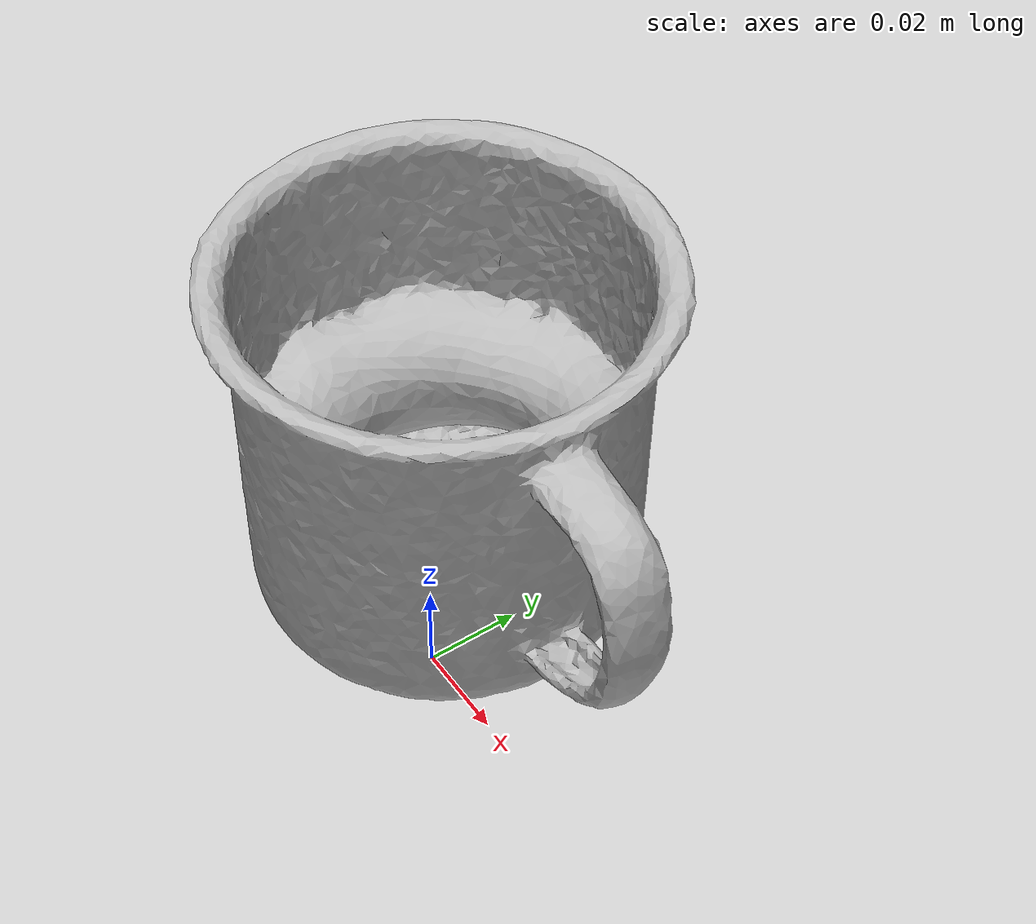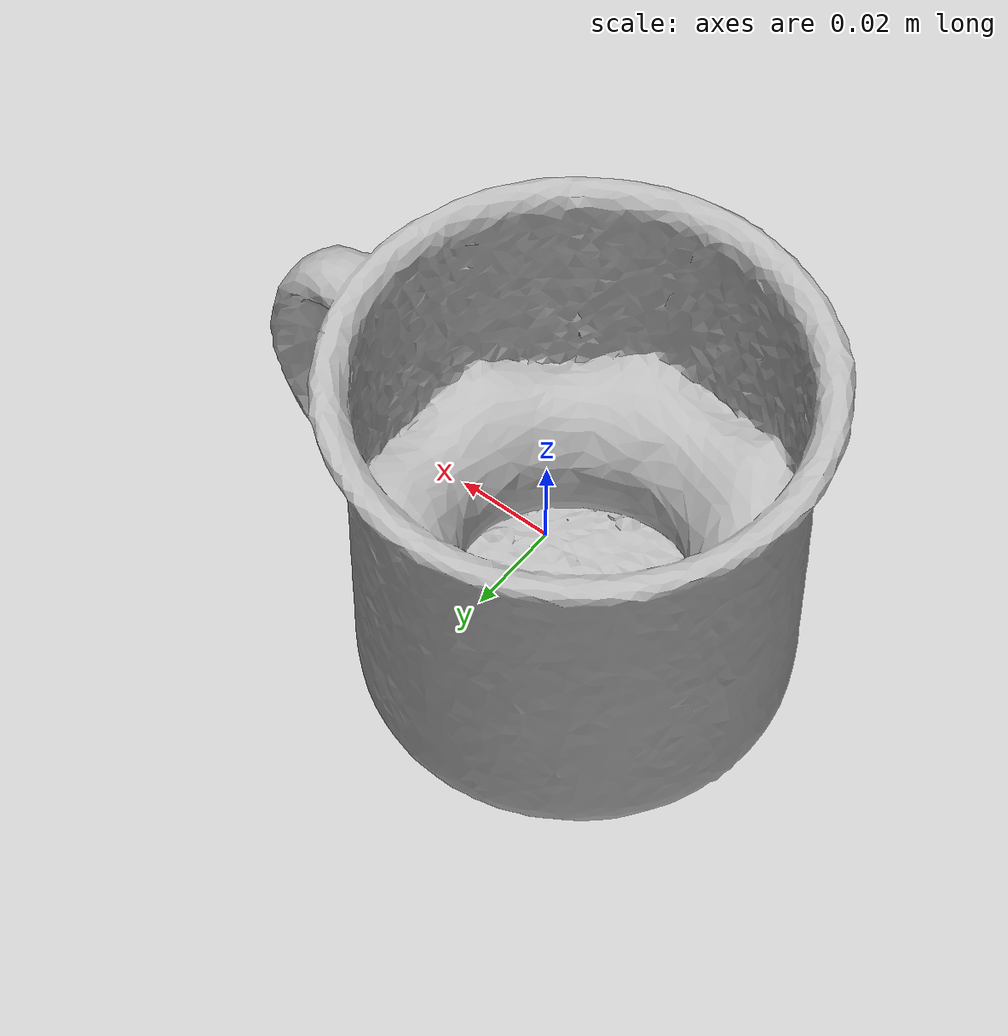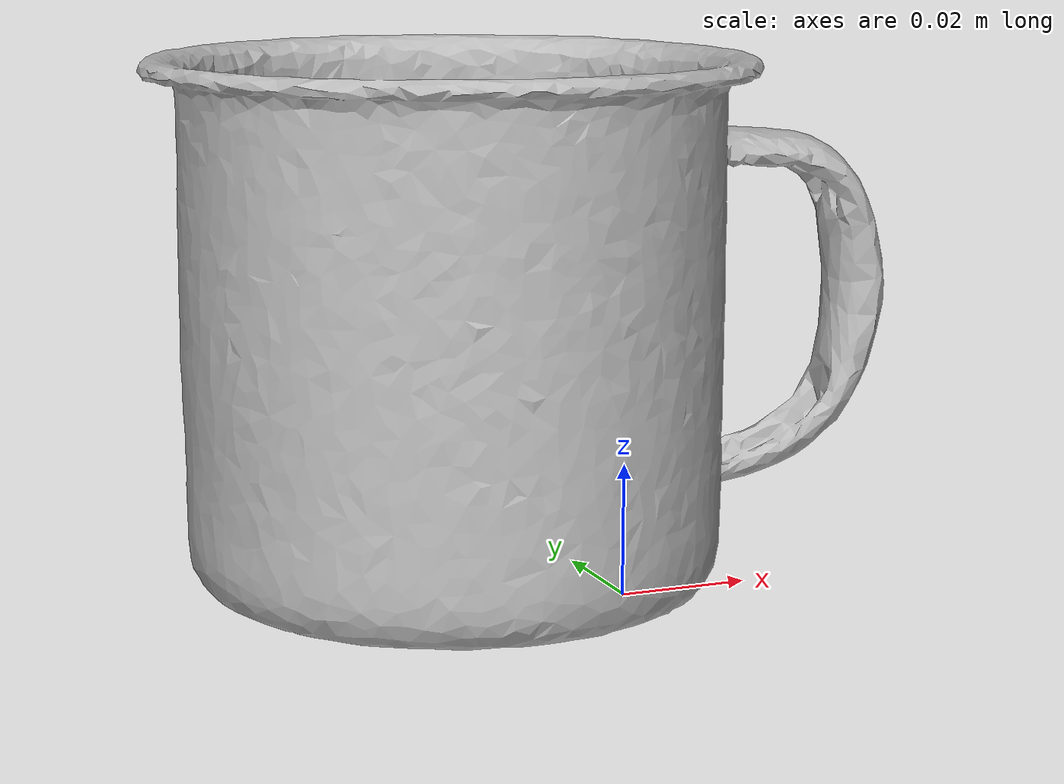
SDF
<?xml version='1.0'?>
<sdf version="1.4">
  <model name="mug">
    <static>false</static>
    <link name="link">
      <inertial>
        <pose>-0.018858606464151616 0.016572962311650615 0.026898852026976835 2.218343732653022 -1.4689543656478918 -2.2505049476744783</pose>
        <mass>0.00013812094844812262</mass>
        <inertia>
          <ixx>1.7285969013124888e-07</ixx>
          <ixy>-4.19530990677684e-23</ixy>
          <ixz>-1.818904577424472e-24</ixz>
          <iyy>1.3507073823129265e-07</iyy>
          <iyz>5.1871918048611555e-24</iyz>
          <izz>1.1879517405979687e-07</izz>
        </inertia>
      </inertial>
      <collision name="collision">
        <geometry>
          <mesh>
            <!-- Use a downsampled mesh for collisions -->
            <uri>model://025_mug/google_16k/025_mug.obj</uri>
            </mesh>
        </geometry>
        <surface>
          <friction>
            <ode>
              <mu>0.9</mu>
              <mu2>0.9</mu2>
            </ode>
          </friction>
          <contact>
            <ode>
              <kp>1000000000000.0</kp>
              <kd>1</kd>
              <min_depth>0.0001</min_depth>
              <max_vel>0.01</max_vel>
            </ode>
          </contact>
          <bounce>
            <restitution_coefficient>0.1</restitution_coefficient>
            <threshold>1000.0</threshold>
          </bounce>
        </surface>
      </collision>
      <visual name="visual">
        <geometry>
          <mesh>
            <uri>model://025_mug/google_16k/025_mug.dae</uri>
            </mesh>
        </geometry>
      </visual>
    </link>
  </model>
</sdf>
